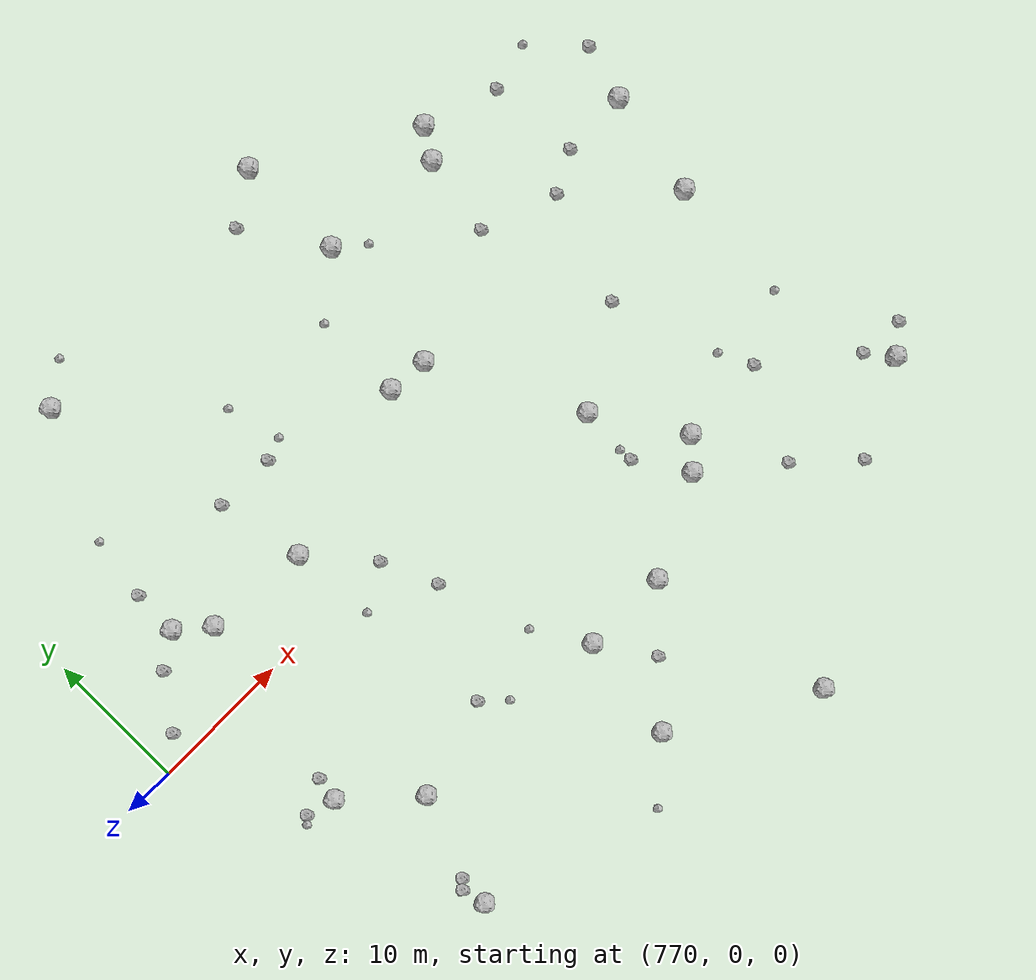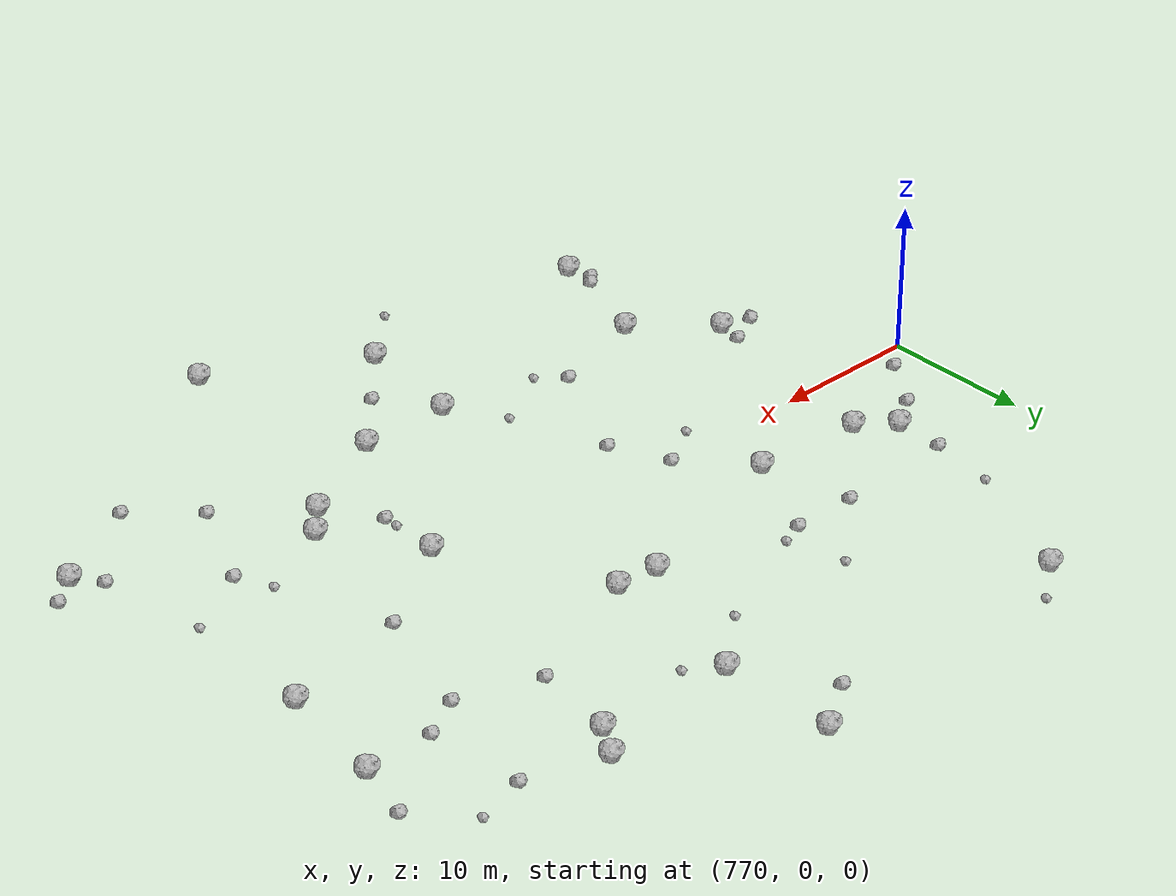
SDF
<sdf version="1.6">
 <world name="default">
  <include><uri>model://sun</uri></include>
  <model name="rock1_20_4">
   <include><uri>model://rock1</uri><pose>802.0205189556019 7.486574501925652 0.5 0 0 0</pose></include>
  </model>
  <model name="rock1_20_5">
   <include><uri>model://rock1</uri><pose>809.5087631940503 -10.590400337450284 0.5 0 0 0</pose></include>
  </model>
  <model name="rock1_20_6">
   <include><uri>model://rock1</uri><pose>779.405938803334 4.857466778240102 0.5 0 0 0</pose></include>
  </model>
  <model name="rock1_20_7">
   <include><uri>model://rock1</uri><pose>786.8127934830445 4.2348298864285425 0.5 0 0 0</pose></include>
  </model>
  <model name="rock1_20_8">
   <include><uri>model://rock1</uri><pose>823.8729016412949 10.76116236165361 0.5 0 0 0</pose></include>
  </model>
  <model name="rock1_20_9">
   <include><uri>model://rock1</uri><pose>802.7441704836879 -14.03080503212193 0.5 0 0 0</pose></include>
  </model>
  <model name="rock1_20_10">
   <include><uri>model://rock1</uri><pose>802.8931426884777 25.060724758355875 0.5 0 0 0</pose></include>
  </model>
  <model name="rock1_20_11">
   <include><uri>model://rock1</uri><pose>777.215210465528 6.705393573558233 0.5 0 0 0</pose></include>
  </model>
  <model name="rock1_20_12">
   <include><uri>model://rock1</uri><pose>822.6527399513428 3.2725482269095068 0.5 0 0 0</pose></include>
  </model>
  <model name="rock1_20_13">
   <include><uri>model://rock1</uri><pose>803.0630426727333 17.350282984773365 0.5 0 0 0</pose></include>
  </model>
  <model name="rock1_20_14">
   <include><uri>model://rock1</uri><pose>807.3645208653074 -2.755788615289589 0.5 0 0 0</pose></include>
  </model>
  <model name="rock1_20_15">
   <include><uri>model://rock1</uri><pose>795.6554487345431 -21.520995145564655 0.5 0 0 0</pose></include>
  </model>
  <model name="rock1_20_16">
   <include><uri>model://rock1</uri><pose>782.0315692935889 23.025693428434337 0.5 0 0 0</pose></include>
  </model>
  <model name="rock1_20_17">
   <include><uri>model://rock1</uri><pose>813.3046469065954 18.73875473518917 0.5 0 0 0</pose></include>
  </model>
  <model name="rock1_20_18">
   <include><uri>model://rock1</uri><pose>799.1094593655869 7.718339656484645 0.5 0 0 0</pose></include>
  </model>
  <model name="rock1_20_19">
   <include><uri>model://rock1</uri><pose>796.5901825148991 -13.990234184252074 0.5 0 0 0</pose></include>
  </model>
  <model name="rock1_20_20">
   <include><uri>model://rock1</uri><pose>811.247391456273 -8.714411438994482 0.5 0 0 0</pose></include>
  </model>
  <model name="rock1_20_21">
   <include><uri>model://rock1</uri><pose>776.8737218745065 -9.126864384216283 0.5 0 0 0</pose></include>
  </model>
  <model name="rock1_20_22">
   <include><uri>model://rock1</uri><pose>781.4557823950586 -13.32806153919411 0.5 0 0 0</pose></include>
  </model>
  <model name="rock1_20_23">
   <include><uri>model://rock1</uri><pose>779.077008350242 -21.21100715339987 0.5 0 0 0</pose></include>
  </model>
  <model name="rock1_20_24">
   <include><uri>model://rock1</uri><pose>824.7420684021431 -14.768969238445628 0.5 0 0 0</pose></include>
  </model>
  <model name="rock1_20_25">
   <include><uri>model://rock1</uri><pose>811.990475582398 16.6778534365181 0.5 0 0 0</pose></include>
  </model>
  <model name="rock1_20_26">
   <include><uri>model://rock1</uri><pose>805.4412272036639 -27.134226109739295 0.5 0 0 0</pose></include>
  </model>
  <model name="rock2_20_0">
   <include><uri>model://rock2</uri><pose>807.1780845021858 -7.070851532900711 0.3 0 0 0</pose></include>
  </model>
  <model name="rock2_20_1">
   <include><uri>model://rock2</uri><pose>813.837381141297 1.37782710279048 0.3 0 0 0</pose></include>
  </model>
  <model name="rock2_20_2">
   <include><uri>model://rock2</uri><pose>826.5820579763295 -13.279114879948615 0.3 0 0 0</pose></include>
  </model>
  <model name="rock2_20_3">
   <include><uri>model://rock2</uri><pose>823.3686414061651 -13.078848441775254 0.3 0 0 0</pose></include>
  </model>
  <model name="rock2_20_4">
   <include><uri>model://rock2</uri><pose>799.0773384570585 -17.776167275585603 0.3 0 0 0</pose></include>
  </model>
  <model name="rock2_20_5">
   <include><uri>model://rock2</uri><pose>811.0184015783917 11.066839104036923 0.3 0 0 0</pose></include>
  </model>
  <model name="rock2_20_6">
   <include><uri>model://rock2</uri><pose>774.717732943752 -8.575543359551439 0.3 0 0 0</pose></include>
  </model>
  <model name="rock2_20_7">
   <include><uri>model://rock2</uri><pose>789.8208496315864 10.239316823425092 0.3 0 0 0</pose></include>
  </model>
  <model name="rock2_20_8">
   <include><uri>model://rock2</uri><pose>818.5066713088413 17.055021150739513 0.3 0 0 0</pose></include>
  </model>
  <model name="rock2_20_9">
   <include><uri>model://rock2</uri><pose>790.33227954914 0.03531430688767756 0.3 0 0 0</pose></include>
  </model>
  <model name="rock2_20_10">
   <include><uri>model://rock2</uri><pose>824.9525200541659 14.680968784085458 0.3 0 0 0</pose></include>
  </model>
  <model name="rock2_20_11">
   <include><uri>model://rock2</uri><pose>819.1382128008056 10.669931126107457 0.3 0 0 0</pose></include>
  </model>
  <model name="rock2_20_12">
   <include><uri>model://rock2</uri><pose>817.5892957405736 -8.437685148724398 0.3 0 0 0</pose></include>
  </model>
  <model name="rock2_20_13">
   <include><uri>model://rock2</uri><pose>777.0621413929521 -7.418088586806558 0.3 0 0 0</pose></include>
  </model>
  <model name="rock2_20_14">
   <include><uri>model://rock2</uri><pose>785.4571306514129 10.31890228112686 0.3 0 0 0</pose></include>
  </model>
  <model name="rock2_20_15">
   <include><uri>model://rock2</uri><pose>816.3470545473012 9.171649196325816 0.3 0 0 0</pose></include>
  </model>
  <model name="rock2_20_16">
   <include><uri>model://rock2</uri><pose>778.5607671558329 -19.580548352500877 0.3 0 0 0</pose></include>
  </model>
  <model name="rock2_20_17">
   <include><uri>model://rock2</uri><pose>779.1085763911543 -19.004093686762978 0.3 0 0 0</pose></include>
  </model>
  <model name="rock2_20_18">
   <include><uri>model://rock2</uri><pose>772.2325689977514 1.7242768920989313 0.3 0 0 0</pose></include>
  </model>
  <model name="rock2_20_19">
   <include><uri>model://rock2</uri><pose>774.7635976783893 5.168894379122364 0.3 0 0 0</pose></include>
  </model>
  <model name="rock2_20_20">
   <include><uri>model://rock2</uri><pose>792.034793832591 -3.8176427968656803 0.3 0 0 0</pose></include>
  </model>
  <model name="rock2_20_21">
   <include><uri>model://rock2</uri><pose>777.1800823957765 9.975030689447905 0.3 0 0 0</pose></include>
  </model>
  <model name="rock2_20_22">
   <include><uri>model://rock2</uri><pose>824.4148309365672 -14.775508740000532 0.3 0 0 0</pose></include>
  </model>
  <model name="rock2_20_23">
   <include><uri>model://rock2</uri><pose>788.302651131272 -11.278375030080795 0.3 0 0 0</pose></include>
  </model>
  <model name="rock2_20_24">
   <include><uri>model://rock2</uri><pose>814.5699840063296 -14.748677122766377 0.3 0 0 0</pose></include>
  </model>
  <model name="rock2_20_25">
   <include><uri>model://rock2</uri><pose>799.4046646740671 22.849873592146473 0.3 0 0 0</pose></include>
  </model>
  <model name="rock2_20_26">
   <include><uri>model://rock2</uri><pose>818.3417192678405 -18.245397793651648 0.3 0 0 0</pose></include>
  </model>
  <model name="rock3_20_0">
   <include><uri>model://rock3</uri><pose>821.8717964397334 17.926792981005192 0.2 0 0 0</pose></include>
  </model>
  <model name="rock3_20_1">
   <include><uri>model://rock3</uri><pose>790.356929822208 14.582226693600234 0.2 0 0 0</pose></include>
  </model>
  <model name="rock3_20_2">
   <include><uri>model://rock3</uri><pose>787.2337420966182 -1.8197466132973936 0.2 0 0 0</pose></include>
  </model>
  <model name="rock3_20_3">
   <include><uri>model://rock3</uri><pose>777.8345825280616 14.367416142792365 0.2 0 0 0</pose></include>
  </model>
  <model name="rock3_20_4">
   <include><uri>model://rock3</uri><pose>794.1881828960434 -10.357400834487407 0.2 0 0 0</pose></include>
  </model>
  <model name="rock3_20_5">
   <include><uri>model://rock3</uri><pose>816.4230162405449 -6.169065545881555 0.2 0 0 0</pose></include>
  </model>
  <model name="rock3_20_6">
   <include><uri>model://rock3</uri><pose>784.6820989703575 25.05309122383825 0.2 0 0 0</pose></include>
  </model>
  <model name="rock3_20_7">
   <include><uri>model://rock3</uri><pose>804.965483720148 15.744905502235682 0.2 0 0 0</pose></include>
  </model>
  <model name="rock3_20_8">
   <include><uri>model://rock3</uri><pose>791.389521968896 10.772676821658088 0.2 0 0 0</pose></include>
  </model>
  <model name="rock3_20_9">
   <include><uri>model://rock3</uri><pose>822.1150836075674 -5.885705165190952 0.2 0 0 0</pose></include>
  </model>
  <model name="rock3_20_10">
   <include><uri>model://rock3</uri><pose>807.1028807517181 -6.125751179190022 0.2 0 0 0</pose></include>
  </model>
  <model name="rock3_20_11">
   <include><uri>model://rock3</uri><pose>799.0140419331261 14.05630970539606 0.2 0 0 0</pose></include>
  </model>
  <model name="rock3_20_12">
   <include><uri>model://rock3</uri><pose>791.7384151503508 -25.068605626808885 0.2 0 0 0</pose></include>
  </model>
  <model name="rock3_20_13">
   <include><uri>model://rock3</uri><pose>789.879023324518 -12.830453323090147 0.2 0 0 0</pose></include>
  </model>
  <model name="rock3_20_14">
   <include><uri>model://rock3</uri><pose>774.2136485899363 -9.087383518183032 0.2 0 0 0</pose></include>
  </model>
 </world>
</sdf>
